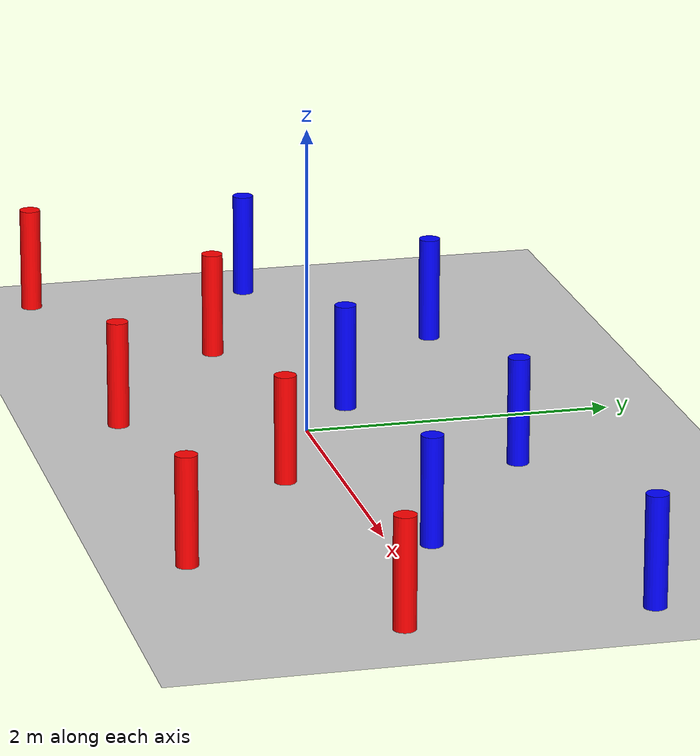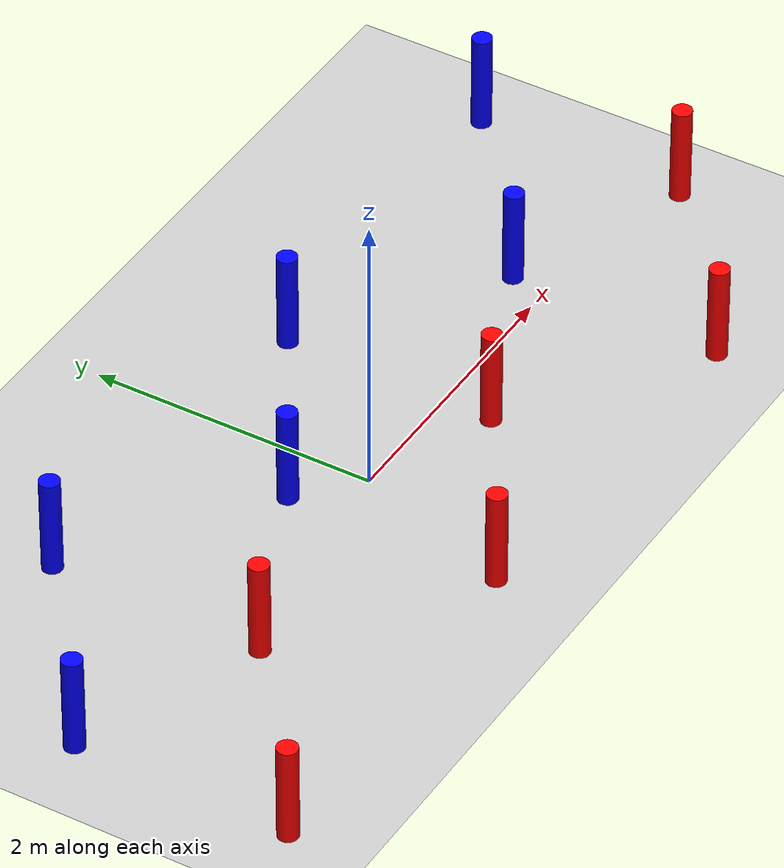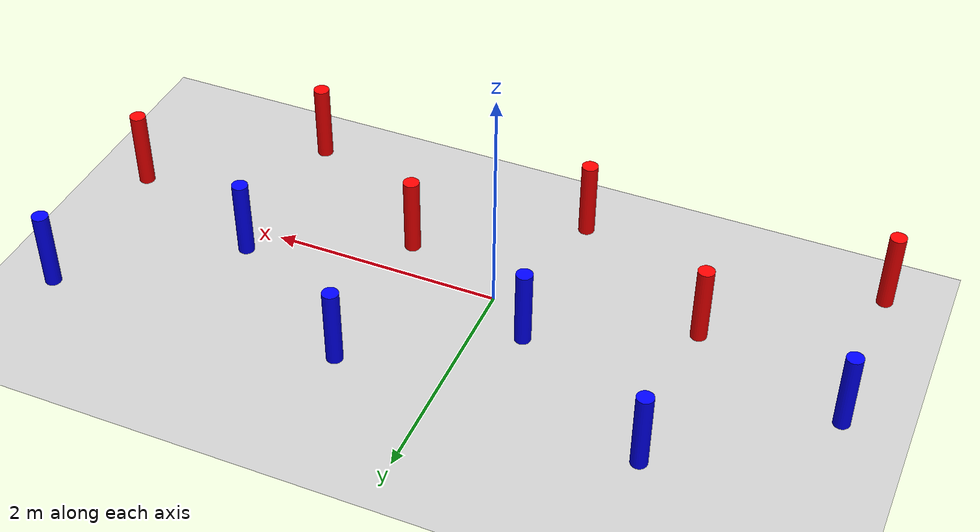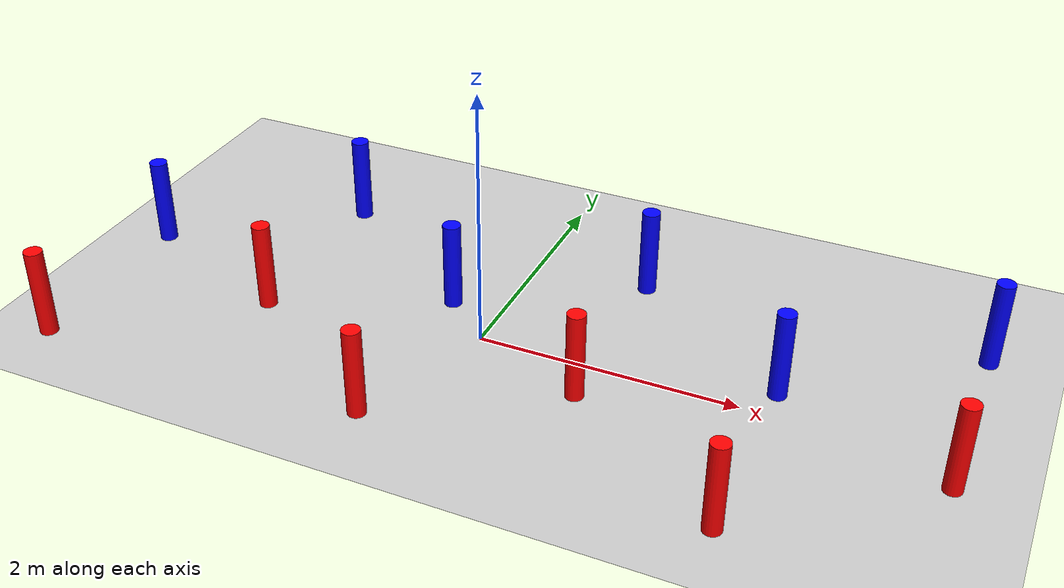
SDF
<?xml version="1.0" ?>
<sdf version="1.6">
  <world name="limo_slalom">
    <include>
      <uri>model://ground_plane</uri>
    </include>
    <include>
      <uri>model://sun</uri>
    </include>

    <!-- Each pair of static cylinders forms one gate. -->
    <model name="gate_1_left">
      <static>true</static><pose>-3.0 -1.25 0.35 0 0 0</pose>
      <link name="link"><collision name="collision"><geometry><cylinder><radius>0.07</radius><length>0.70</length></cylinder></geometry></collision><visual name="visual"><geometry><cylinder><radius>0.07</radius><length>0.70</length></cylinder></geometry><material><ambient>1 0 0 1</ambient></material></visual></link>
    </model>
    <model name="gate_1_right">
      <static>true</static><pose>-3.0 0.25 0.35 0 0 0</pose>
      <link name="link"><collision name="collision"><geometry><cylinder><radius>0.07</radius><length>0.70</length></cylinder></geometry></collision><visual name="visual"><geometry><cylinder><radius>0.07</radius><length>0.70</length></cylinder></geometry><material><ambient>0 0 1 1</ambient></material></visual></link>
    </model>
    <model name="gate_2_left">
      <static>true</static><pose>-1.7 -0.25 0.35 0 0 0</pose>
      <link name="link"><collision name="collision"><geometry><cylinder><radius>0.07</radius><length>0.70</length></cylinder></geometry></collision><visual name="visual"><geometry><cylinder><radius>0.07</radius><length>0.70</length></cylinder></geometry><material><ambient>1 0 0 1</ambient></material></visual></link>
    </model>
    <model name="gate_2_right">
      <static>true</static><pose>-1.7 1.25 0.35 0 0 0</pose>
      <link name="link"><collision name="collision"><geometry><cylinder><radius>0.07</radius><length>0.70</length></cylinder></geometry></collision><visual name="visual"><geometry><cylinder><radius>0.07</radius><length>0.70</length></cylinder></geometry><material><ambient>0 0 1 1</ambient></material></visual></link>
    </model>
    <model name="gate_3_left">
      <static>true</static><pose>-0.4 -1.15 0.35 0 0 0</pose>
      <link name="link"><collision name="collision"><geometry><cylinder><radius>0.07</radius><length>0.70</length></cylinder></geometry></collision><visual name="visual"><geometry><cylinder><radius>0.07</radius><length>0.70</length></cylinder></geometry><material><ambient>1 0 0 1</ambient></material></visual></link>
    </model>
    <model name="gate_3_right">
      <static>true</static><pose>-0.4 0.35 0.35 0 0 0</pose>
      <link name="link"><collision name="collision"><geometry><cylinder><radius>0.07</radius><length>0.70</length></cylinder></geometry></collision><visual name="visual"><geometry><cylinder><radius>0.07</radius><length>0.70</length></cylinder></geometry><material><ambient>0 0 1 1</ambient></material></visual></link>
    </model>
    <model name="gate_4_left">
      <static>true</static><pose>0.9 -0.35 0.35 0 0 0</pose>
      <link name="link"><collision name="collision"><geometry><cylinder><radius>0.07</radius><length>0.70</length></cylinder></geometry></collision><visual name="visual"><geometry><cylinder><radius>0.07</radius><length>0.70</length></cylinder></geometry><material><ambient>1 0 0 1</ambient></material></visual></link>
    </model>
    <model name="gate_4_right">
      <static>true</static><pose>0.9 1.15 0.35 0 0 0</pose>
      <link name="link"><collision name="collision"><geometry><cylinder><radius>0.07</radius><length>0.70</length></cylinder></geometry></collision><visual name="visual"><geometry><cylinder><radius>0.07</radius><length>0.70</length></cylinder></geometry><material><ambient>0 0 1 1</ambient></material></visual></link>
    </model>
    <model name="gate_5_left">
      <static>true</static><pose>2.2 -1.25 0.35 0 0 0</pose>
      <link name="link"><collision name="collision"><geometry><cylinder><radius>0.07</radius><length>0.70</length></cylinder></geometry></collision><visual name="visual"><geometry><cylinder><radius>0.07</radius><length>0.70</length></cylinder></geometry><material><ambient>1 0 0 1</ambient></material></visual></link>
    </model>
    <model name="gate_5_right">
      <static>true</static><pose>2.2 0.25 0.35 0 0 0</pose>
      <link name="link"><collision name="collision"><geometry><cylinder><radius>0.07</radius><length>0.70</length></cylinder></geometry></collision><visual name="visual"><geometry><cylinder><radius>0.07</radius><length>0.70</length></cylinder></geometry><material><ambient>0 0 1 1</ambient></material></visual></link>
    </model>
    <model name="gate_6_left">
      <static>true</static><pose>3.5 -0.25 0.35 0 0 0</pose>
      <link name="link"><collision name="collision"><geometry><cylinder><radius>0.07</radius><length>0.70</length></cylinder></geometry></collision><visual name="visual"><geometry><cylinder><radius>0.07</radius><length>0.70</length></cylinder></geometry><material><ambient>1 0 0 1</ambient></material></visual></link>
    </model>
    <model name="gate_6_right">
      <static>true</static><pose>3.5 1.25 0.35 0 0 0</pose>
      <link name="link"><collision name="collision"><geometry><cylinder><radius>0.07</radius><length>0.70</length></cylinder></geometry></collision><visual name="visual"><geometry><cylinder><radius>0.07</radius><length>0.70</length></cylinder></geometry><material><ambient>0 0 1 1</ambient></material></visual></link>
    </model>
  </world>
</sdf>
